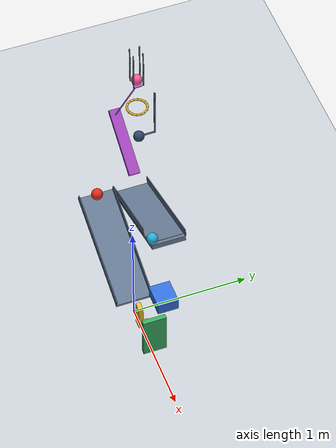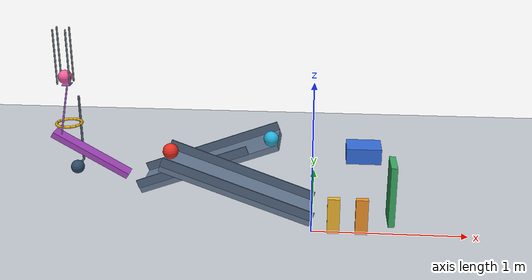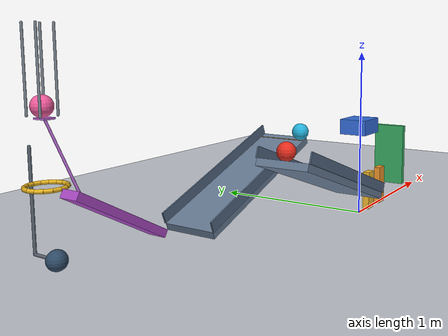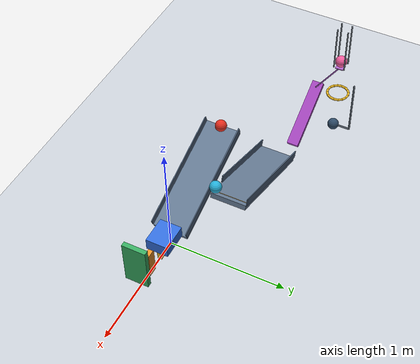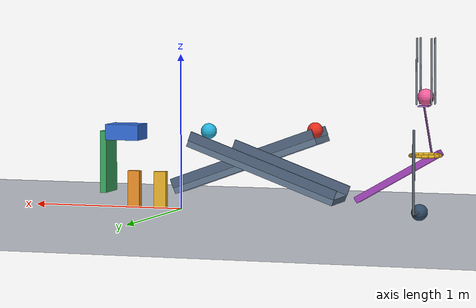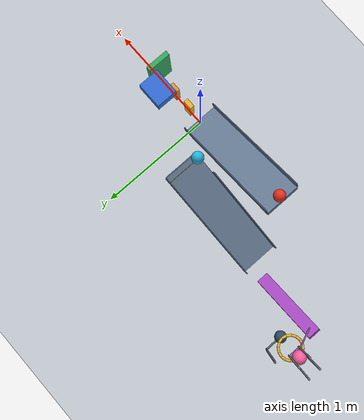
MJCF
<mujoco model="passive_chain_reaction">
  <compiler angle="degree" autolimits="true" inertiafromgeom="true"/>
  <option timestep="0.002" gravity="0 0 -9.81" integrator="implicitfast" solver="Newton" iterations="100" tolerance="1e-10"/>
  <size nconmax="300" njmax="1200"/>
  <visual>
    <global azimuth="110" elevation="-20"/>
    <map znear="0.01" zfar="30"/>
  </visual>

  <!-- Initial velocities are zero. Soft-contact damping approximates restitution 0.05.
       Sliding friction is 0.70 throughout. -->

  <worldbody>
    <light name="main_light" pos="-0.5 -2 4" dir="0.1 0.4 -1" diffuse="0.8 0.8 0.8"/>
    <camera name="overview" pos="-3 -4 2.4" xyaxes="0.85 -0.53 0 0.23 0.37 0.90"/>

    <geom name="floor" type="plane" size="6 4 0.1" friction="0.70 0.001 0.002" condim="6" solref="0.006 0.6901" solimp="0.95 0.99 0.001" rgba="0.78 0.80 0.83 1"/>

    <!-- Ramp1 has a 1.00 m deck at 20 degrees, with its low surface edge at z=0.15. -->
    <body name="ramp1" pos="-0.476687 0 0.302216" quat="0.984807753 0 0.173648178 0">
      <geom name="ramp1_deck" type="box" size="0.50 0.15 0.02" friction="0.70 0.001 0.002" condim="6" solref="0.006 0.6901" solimp="0.95 0.99 0.001" rgba="0.40 0.48 0.58 1"/>
      <geom name="ramp1_rail_left" type="box" pos="0 -0.154 0.05" size="0.50 0.004 0.03" friction="0.70 0.001 0.002" condim="6" solref="0.006 0.6901" solimp="0.95 0.99 0.001" rgba="0.32 0.40 0.50 1"/>
      <geom name="ramp1_rail_right" type="box" pos="0 0.154 0.05" size="0.50 0.004 0.03" friction="0.70 0.001 0.002" condim="6" solref="0.006 0.6901" solimp="0.95 0.99 0.001" rgba="0.32 0.40 0.50 1"/>
    </body>

    <body name="ball1" pos="-0.899099 0 0.530455">
      <freejoint name="ball1_free"/>
      <geom name="ball1_sphere" type="sphere" size="0.05" mass="0.20" friction="0.70 0.001 0.002" condim="6" solref="0.006 0.6901" solimp="0.95 0.99 0.001" rgba="0.90 0.18 0.12 1"/>
    </body>

    <!-- Domino1's near face is 0.10 m beyond ramp1's exit. -->
    <body name="domino1" pos="0.14 0 0.12">
      <freejoint name="domino1_free"/>
      <geom name="domino1_block" type="box" size="0.04 0.02 0.12" mass="0.25" friction="0.70 0.001 0.002" condim="6" solref="0.006 0.6901" solimp="0.95 0.99 0.001" rgba="0.94 0.72 0.18 1"/>
    </body>

    <body name="domino2" pos="0.32 0 0.12">
      <freejoint name="domino2_free"/>
      <geom name="domino2_block" type="box" size="0.04 0.02 0.12" mass="0.25" friction="0.70 0.001 0.002" condim="6" solref="0.006 0.6901" solimp="0.95 0.99 0.001" rgba="0.94 0.58 0.16 1"/>
    </body>

    <!-- The lower panel receives domino2; the upper panel strikes cart1. -->
    <body name="flap1" pos="0.50 0 0.27">
      <joint name="flap1_hinge" type="hinge" axis="0 -1 0" damping="0.04" limited="true" range="0 65" solreflimit="0.004 1" solimplimit="0.99 0.999 0.0001"/>
      <geom name="flap1_panel" type="box" pos="0 0 0.03" size="0.02 0.10 0.20" mass="0.30" friction="0.70 0.001 0.002" condim="6" solref="0.006 0.6901" solimp="0.95 0.99 0.001" rgba="0.22 0.67 0.38 1"/>
    </body>

    <body name="cart1" pos="0.32 0.15 0.505">
      <joint name="cart1_slide" type="slide" axis="-1 0 0" damping="0.20" limited="true" range="0 0.50" solreflimit="0.004 1" solimplimit="0.99 0.999 0.0001"/>
      <geom name="cart1_chassis" type="box" size="0.11 0.09 0.05" mass="0.50" friction="0.70 0.001 0.002" condim="6" solref="0.006 0.6901" solimp="0.95 0.99 0.001" rgba="0.20 0.43 0.86 1"/>
    </body>

    <!-- Ramp2 clears the cart laterally.
         The near-side rail begins downstream of the cart.
         The retaining lip holds ball2 with a shallow release barrier. -->
    <body name="ramp2" pos="-0.702413 0.40 0.302216" quat="0.984807753 0 -0.173648178 0">
      <geom name="ramp2_deck" type="box" size="0.50 0.15 0.02" friction="0.70 0.001 0.002" condim="6" solref="0.006 0.6901" solimp="0.95 0.99 0.001" rgba="0.40 0.48 0.58 1"/>
      <geom name="ramp2_rail_left" type="box" pos="-0.10 -0.154 0.05" size="0.40 0.004 0.03" friction="0.70 0.001 0.002" condim="6" solref="0.006 0.6901" solimp="0.95 0.99 0.001" rgba="0.32 0.40 0.50 1"/>
      <geom name="ramp2_rail_right" type="box" pos="0 0.154 0.05" size="0.50 0.004 0.03" friction="0.70 0.001 0.002" condim="6" solref="0.006 0.6901" solimp="0.95 0.99 0.001" rgba="0.32 0.40 0.50 1"/>
      <geom name="ramp2_retaining_lip" type="capsule" fromto="0.456026 -0.145 0.0218 0.456026 0.145 0.0218" size="0.0018" friction="0.70 0.001 0" condim="3" solref="0.006 0.6901" solimp="0.95 0.99 0.001" rgba="0.72 0.55 0.23 1"/>
    </body>

    <body name="ball2" pos="-0.28 0.27 0.530455">
      <freejoint name="ball2_free"/>
      <geom name="ball2_sphere" type="sphere" size="0.05" mass="0.20" friction="0.70 0.001 0.002" condim="6" solref="0.006 0.6901" solimp="0.95 0.99 0.001" rgba="0.15 0.70 0.86 1"/>
    </body>

    <body name="lever1" pos="-1.568908 0.48 0.30" quat="0.965925826 0 0.258819045 0">
      <joint name="lever1_hinge" type="hinge" axis="0 1 0" damping="0.04" stiffness="0.33" springref="60" limited="true" range="0 45" solreflimit="0.004 1" solimplimit="0.99 0.999 0.0001"/>
      <geom name="lever1_panel" type="box" size="0.30 0.05 0.02" mass="0.485" friction="0.70 0.001 0.002" condim="6" solref="0.006 0.6901" solimp="0.95 0.99 0.001" rgba="0.66 0.28 0.76 1"/>
      <geom name="lever1_carrier_stem" type="capsule" fromto="-0.25 0 0.02 -0.399840 0.20 0.279532" size="0.006" mass="0.010" friction="0.70 0.001 0.002" condim="6" solref="0.006 0.6901" solimp="0.95 0.99 0.001" rgba="0.55 0.31 0.65 1"/>
      <geom name="lever1_carrier_pad" type="box" pos="-0.401840 0.20 0.282996" quat="0.965925826 0 -0.258819045 0" size="0.030 0.035 0.004" mass="0.005" friction="0.70 0.001 0.002" condim="6" solref="0.006 0.6901" solimp="0.95 0.99 0.001" rgba="0.73 0.40 0.82 1"/>
    </body>

    <body name="ball3" pos="-1.785414 0.68 0.80">
      <freejoint name="ball3_free"/>
      <geom name="ball3_sphere" type="sphere" size="0.05" mass="0.20" friction="0.70 0.001 0.002" condim="6" solref="0.006 0.6901" solimp="0.95 0.99 0.001" rgba="0.96 0.36 0.62 1"/>
    </body>

    <!-- Diagonal guide posts constrain lateral ball motion while leaving a
         central slot wide enough for the carrier pad to swing through. -->
    <body name="launch_guide" pos="-1.785414 0.68 0">
      <geom name="launch_guide_NE" type="capsule" fromto="0.045 0.045 0.76 0.045 0.045 1.15" size="0.006" friction="0.70 0.001 0.002" condim="6" solref="0.006 0.6901" solimp="0.95 0.99 0.001" rgba="0.48 0.52 0.56 1"/>
      <geom name="launch_guide_NW" type="capsule" fromto="-0.045 0.045 0.76 -0.045 0.045 1.15" size="0.006" friction="0.70 0.001 0.002" condim="6" solref="0.006 0.6901" solimp="0.95 0.99 0.001" rgba="0.48 0.52 0.56 1"/>
      <geom name="launch_guide_SW" type="capsule" fromto="-0.045 -0.045 0.76 -0.045 -0.045 1.15" size="0.006" friction="0.70 0.001 0.002" condim="6" solref="0.006 0.6901" solimp="0.95 0.99 0.001" rgba="0.48 0.52 0.56 1"/>
      <geom name="launch_guide_SE" type="capsule" fromto="0.045 -0.045 0.76 0.045 -0.045 1.15" size="0.006" friction="0.70 0.001 0.002" condim="6" solref="0.006 0.6901" solimp="0.95 0.99 0.001" rgba="0.48 0.52 0.56 1"/>
    </body>

    <!-- The horizontal ring has a 0.16 m minimum clear diameter.
         Its center plane is 0.35 m below ball3's initial center. -->
    <body name="ring1" pos="-1.785414 0.68 0.45">
      <geom name="ring1_segment01" type="capsule" fromto="0.091762 0 0 0.084779 0.035116 0" size="0.01" friction="0.70 0.001 0.002" condim="6" solref="0.006 0.6901" solimp="0.95 0.99 0.001" rgba="0.90 0.70 0.12 1"/>
      <geom name="ring1_segment02" type="capsule" fromto="0.084779 0.035116 0 0.064886 0.064886 0" size="0.01" friction="0.70 0.001 0.002" condim="6" solref="0.006 0.6901" solimp="0.95 0.99 0.001" rgba="0.90 0.70 0.12 1"/>
      <geom name="ring1_segment03" type="capsule" fromto="0.064886 0.064886 0 0.035116 0.084779 0" size="0.01" friction="0.70 0.001 0.002" condim="6" solref="0.006 0.6901" solimp="0.95 0.99 0.001" rgba="0.90 0.70 0.12 1"/>
      <geom name="ring1_segment04" type="capsule" fromto="0.035116 0.084779 0 0 0.091762 0" size="0.01" friction="0.70 0.001 0.002" condim="6" solref="0.006 0.6901" solimp="0.95 0.99 0.001" rgba="0.90 0.70 0.12 1"/>
      <geom name="ring1_segment05" type="capsule" fromto="0 0.091762 0 -0.035116 0.084779 0" size="0.01" friction="0.70 0.001 0.002" condim="6" solref="0.006 0.6901" solimp="0.95 0.99 0.001" rgba="0.90 0.70 0.12 1"/>
      <geom name="ring1_segment06" type="capsule" fromto="-0.035116 0.084779 0 -0.064886 0.064886 0" size="0.01" friction="0.70 0.001 0.002" condim="6" solref="0.006 0.6901" solimp="0.95 0.99 0.001" rgba="0.90 0.70 0.12 1"/>
      <geom name="ring1_segment07" type="capsule" fromto="-0.064886 0.064886 0 -0.084779 0.035116 0" size="0.01" friction="0.70 0.001 0.002" condim="6" solref="0.006 0.6901" solimp="0.95 0.99 0.001" rgba="0.90 0.70 0.12 1"/>
      <geom name="ring1_segment08" type="capsule" fromto="-0.084779 0.035116 0 -0.091762 0 0" size="0.01" friction="0.70 0.001 0.002" condim="6" solref="0.006 0.6901" solimp="0.95 0.99 0.001" rgba="0.90 0.70 0.12 1"/>
      <geom name="ring1_segment09" type="capsule" fromto="-0.091762 0 0 -0.084779 -0.035116 0" size="0.01" friction="0.70 0.001 0.002" condim="6" solref="0.006 0.6901" solimp="0.95 0.99 0.001" rgba="0.90 0.70 0.12 1"/>
      <geom name="ring1_segment10" type="capsule" fromto="-0.084779 -0.035116 0 -0.064886 -0.064886 0" size="0.01" friction="0.70 0.001 0.002" condim="6" solref="0.006 0.6901" solimp="0.95 0.99 0.001" rgba="0.90 0.70 0.12 1"/>
      <geom name="ring1_segment11" type="capsule" fromto="-0.064886 -0.064886 0 -0.035116 -0.084779 0" size="0.01" friction="0.70 0.001 0.002" condim="6" solref="0.006 0.6901" solimp="0.95 0.99 0.001" rgba="0.90 0.70 0.12 1"/>
      <geom name="ring1_segment12" type="capsule" fromto="-0.035116 -0.084779 0 0 -0.091762 0" size="0.01" friction="0.70 0.001 0.002" condim="6" solref="0.006 0.6901" solimp="0.95 0.99 0.001" rgba="0.90 0.70 0.12 1"/>
      <geom name="ring1_segment13" type="capsule" fromto="0 -0.091762 0 0.035116 -0.084779 0" size="0.01" friction="0.70 0.001 0.002" condim="6" solref="0.006 0.6901" solimp="0.95 0.99 0.001" rgba="0.90 0.70 0.12 1"/>
      <geom name="ring1_segment14" type="capsule" fromto="0.035116 -0.084779 0 0.064886 -0.064886 0" size="0.01" friction="0.70 0.001 0.002" condim="6" solref="0.006 0.6901" solimp="0.95 0.99 0.001" rgba="0.90 0.70 0.12 1"/>
      <geom name="ring1_segment15" type="capsule" fromto="0.064886 -0.064886 0 0.084779 -0.035116 0" size="0.01" friction="0.70 0.001 0.002" condim="6" solref="0.006 0.6901" solimp="0.95 0.99 0.001" rgba="0.90 0.70 0.12 1"/>
      <geom name="ring1_segment16" type="capsule" fromto="0.084779 -0.035116 0 0.091762 0 0" size="0.01" friction="0.70 0.001 0.002" condim="6" solref="0.006 0.6901" solimp="0.95 0.99 0.001" rgba="0.90 0.70 0.12 1"/>
    </body>

    <body name="pendulum1" pos="-1.750414 0.83 0.606325">
      <joint name="pendulum1_hinge" type="hinge" axis="0 1 0" damping="0.04"/>
      <geom name="pendulum1_shaft" type="capsule" fromto="0 0 0 0 0 -0.50" size="0.008" mass="0.045" friction="0.70 0.001 0.002" condim="6" solref="0.006 0.6901" solimp="0.95 0.99 0.001" rgba="0.34 0.38 0.43 1"/>
      <geom name="pendulum1_bob_bracket" type="capsule" fromto="0 0 -0.50 0 -0.15 -0.50" size="0.008" mass="0.005" friction="0.70 0.001 0.002" condim="6" solref="0.006 0.6901" solimp="0.95 0.99 0.001" rgba="0.34 0.38 0.43 1"/>
      <geom name="pendulum1_bob" type="sphere" pos="0 -0.15 -0.50" size="0.05" mass="0.30" friction="0.70 0.001 0.002" condim="6" solref="0.006 0.6901" solimp="0.95 0.99 0.001" rgba="0.18 0.29 0.40 1"/>
    </body>
  </worldbody>

  <!-- Pair-specific rolling resistance leaves the already-working upstream contacts unchanged. -->
  <contact>
    <pair name="ball2_floor_contact" geom1="floor" geom2="ball2_sphere" condim="6" friction="0.70 0.70 0.001 0.004 0.004" solref="0.006 0.6901" solimp="0.95 0.99 0.001"/>
    <pair name="ball3_floor_contact" geom1="floor" geom2="ball3_sphere" condim="6" friction="0.70 0.70 0.001 0.004 0.004" solref="0.006 0.6901" solimp="0.95 0.99 0.001"/>
  </contact>

  <keyframe>
    <key name="start"/>
  </keyframe>
</mujoco>
